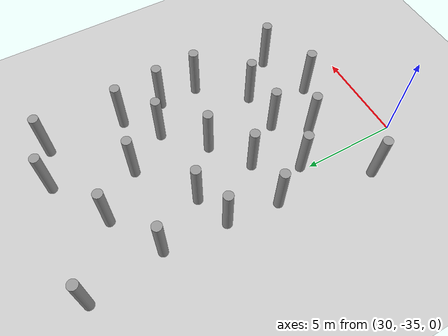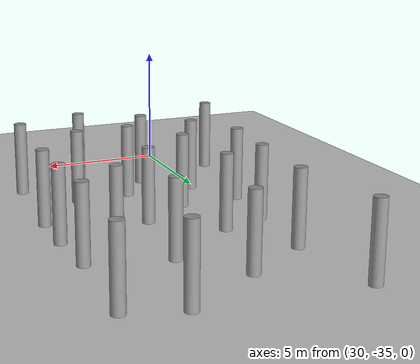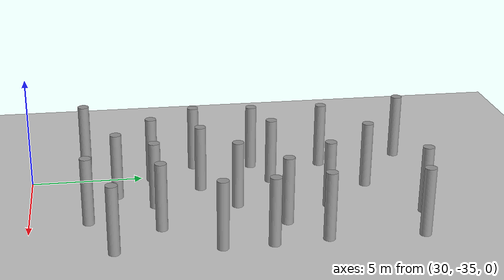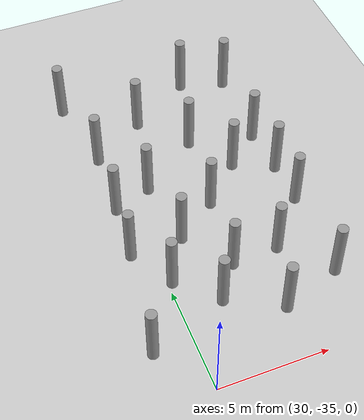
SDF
<sdf version="1.6">
 <world name="default">
  <model name="ground_plane">
   <static>1</static>
   <link name="link">
    <collision name="collision">
     <geometry><plane><normal>0 0 1</normal><size>100 100</size></plane></geometry>
     <surface><friction><ode><mu>100</mu><mu2>50</mu2></ode></friction></surface>
    </collision>
    <visual name="visual">
     <cast_shadows>0</cast_shadows>
     <geometry><plane><normal>0 0 1</normal><size>100 100</size></plane></geometry>
     <material>
      <script><uri>file://media/materials/scripts/gazebo.material</uri><name>Gazebo/Grey</name></script>
     </material>
    </visual>
   </link>
  </model>
  <model name="LjjForest_7">
   <link name="link_0_clone">
    <inertial>
     <mass>1</mass>
     <inertia><ixx>0.145833</ixx><ixy>0</ixy><ixz>0</ixz><iyy>0.145833</iyy><iyz>0</iyz><izz>0.125</izz></inertia>
    </inertial>
    <pose>-2.83119 0.981911 0 0 -0 0</pose>
    <visual name="visual">
     <geometry><cylinder><radius>0.25</radius><length>3</length></cylinder></geometry>
     <material>
      <lighting>1</lighting>
      <script><uri>file://media/materials/scripts/gazebo.material</uri><name>Gazebo/Grey</name></script>
      <shader type="vertex"><normal_map>__default__</normal_map></shader>
      <ambient>0.3 0.3 0.3 1</ambient>
      <diffuse>0.7 0.7 0.7 1</diffuse>
      <specular>0.01 0.01 0.01 1</specular>
      <emissive>0 0 0 1</emissive>
     </material>
    </visual>
    <collision name="collision">
     <geometry><cylinder><radius>0.25</radius><length>3</length></cylinder></geometry>
     <surface>
      <friction>
       <ode><mu>1</mu><mu2>1</mu2><fdir1>0 0 0</fdir1><slip1>0</slip1><slip2>0</slip2></ode>
       <torsional>
        <coefficient>1</coefficient>
        <patch_radius>0</patch_radius>
        <surface_radius>0</surface_radius>
        <use_patch_radius>1</use_patch_radius>
        <ode><slip>0</slip></ode>
       </torsional>
      </friction>
      <bounce><restitution_coefficient>0</restitution_coefficient><threshold>1e+06</threshold></bounce>
      <contact>
       <collide_without_contact>0</collide_without_contact>
       <collide_without_contact_bitmask>1</collide_without_contact_bitmask>
       <collide_bitmask>1</collide_bitmask>
       <ode>
        <soft_cfm>0</soft_cfm>
        <soft_erp>0.2</soft_erp>
        <kp>1e+13</kp>
        <kd>1</kd>
        <max_vel>0.01</max_vel>
        <min_depth>0</min_depth>
       </ode>
       <bullet>
        <split_impulse>1</split_impulse>
        <split_impulse_penetration_threshold>-0.01</split_impulse_penetration_threshold>
        <soft_cfm>0</soft_cfm>
        <soft_erp>0.2</soft_erp>
        <kp>1e+13</kp>
        <kd>1</kd>
       </bullet>
      </contact>
     </surface>
    </collision>
   </link>
   <link name="link_0_clone_0">
    <inertial>
     <mass>1</mass>
     <inertia><ixx>0.145833</ixx><ixy>0</ixy><ixz>0</ixz><iyy>0.145833</iyy><iyz>0</iyz><izz>0.125</izz></inertia>
    </inertial>
    <pose>-0.25253 2.5682 0 0 -0 0</pose>
    <visual name="visual">
     <geometry><cylinder><radius>0.25</radius><length>3</length></cylinder></geometry>
     <material>
      <lighting>1</lighting>
      <script><uri>file://media/materials/scripts/gazebo.material</uri><name>Gazebo/Grey</name></script>
      <shader type="vertex"><normal_map>__default__</normal_map></shader>
      <ambient>0.3 0.3 0.3 1</ambient>
      <diffuse>0.7 0.7 0.7 1</diffuse>
      <specular>0.01 0.01 0.01 1</specular>
      <emissive>0 0 0 1</emissive>
     </material>
    </visual>
    <collision name="collision">
     <geometry><cylinder><radius>0.25</radius><length>3</length></cylinder></geometry>
     <surface>
      <friction>
       <ode><mu>1</mu><mu2>1</mu2><fdir1>0 0 0</fdir1><slip1>0</slip1><slip2>0</slip2></ode>
       <torsional>
        <coefficient>1</coefficient>
        <patch_radius>0</patch_radius>
        <surface_radius>0</surface_radius>
        <use_patch_radius>1</use_patch_radius>
        <ode><slip>0</slip></ode>
       </torsional>
      </friction>
      <bounce><restitution_coefficient>0</restitution_coefficient><threshold>1e+06</threshold></bounce>
      <contact>
       <collide_without_contact>0</collide_without_contact>
       <collide_without_contact_bitmask>1</collide_without_contact_bitmask>
       <collide_bitmask>1</collide_bitmask>
       <ode>
        <soft_cfm>0</soft_cfm>
        <soft_erp>0.2</soft_erp>
        <kp>1e+13</kp>
        <kd>1</kd>
        <max_vel>0.01</max_vel>
        <min_depth>0</min_depth>
       </ode>
       <bullet>
        <split_impulse>1</split_impulse>
        <split_impulse_penetration_threshold>-0.01</split_impulse_penetration_threshold>
        <soft_cfm>0</soft_cfm>
        <soft_erp>0.2</soft_erp>
        <kp>1e+13</kp>
        <kd>1</kd>
       </bullet>
      </contact>
     </surface>
    </collision>
   </link>
   <link name="link_0_clone_1">
    <inertial>
     <mass>1</mass>
     <inertia><ixx>0.145833</ixx><ixy>0</ixy><ixz>0</ixz><iyy>0.145833</iyy><iyz>0</iyz><izz>0.125</izz></inertia>
    </inertial>
    <pose>-1.2394 -1.64814 0 0 -0 0</pose>
    <visual name="visual">
     <geometry><cylinder><radius>0.25</radius><length>3</length></cylinder></geometry>
     <material>
      <lighting>1</lighting>
      <script><uri>file://media/materials/scripts/gazebo.material</uri><name>Gazebo/Grey</name></script>
      <shader type="vertex"><normal_map>__default__</normal_map></shader>
      <ambient>0.3 0.3 0.3 1</ambient>
      <diffuse>0.7 0.7 0.7 1</diffuse>
      <specular>0.01 0.01 0.01 1</specular>
      <emissive>0 0 0 1</emissive>
     </material>
    </visual>
    <collision name="collision">
     <geometry><cylinder><radius>0.25</radius><length>3</length></cylinder></geometry>
     <surface>
      <friction>
       <ode><mu>1</mu><mu2>1</mu2><fdir1>0 0 0</fdir1><slip1>0</slip1><slip2>0</slip2></ode>
       <torsional>
        <coefficient>1</coefficient>
        <patch_radius>0</patch_radius>
        <surface_radius>0</surface_radius>
        <use_patch_radius>1</use_patch_radius>
        <ode><slip>0</slip></ode>
       </torsional>
      </friction>
      <bounce><restitution_coefficient>0</restitution_coefficient><threshold>1e+06</threshold></bounce>
      <contact>
       <collide_without_contact>0</collide_without_contact>
       <collide_without_contact_bitmask>1</collide_without_contact_bitmask>
       <collide_bitmask>1</collide_bitmask>
       <ode>
        <soft_cfm>0</soft_cfm>
        <soft_erp>0.2</soft_erp>
        <kp>1e+13</kp>
        <kd>1</kd>
        <max_vel>0.01</max_vel>
        <min_depth>0</min_depth>
       </ode>
       <bullet>
        <split_impulse>1</split_impulse>
        <split_impulse_penetration_threshold>-0.01</split_impulse_penetration_threshold>
        <soft_cfm>0</soft_cfm>
        <soft_erp>0.2</soft_erp>
        <kp>1e+13</kp>
        <kd>1</kd>
       </bullet>
      </contact>
     </surface>
    </collision>
   </link>
   <link name="link_0_clone_10">
    <inertial>
     <mass>1</mass>
     <inertia><ixx>0.145833</ixx><ixy>0</ixy><ixz>0</ixz><iyy>0.145833</iyy><iyz>0</iyz><izz>0.125</izz></inertia>
    </inertial>
    <pose>4.92442 -4.7051 0 0 -0 0</pose>
    <visual name="visual">
     <geometry><cylinder><radius>0.25</radius><length>3</length></cylinder></geometry>
     <material>
      <lighting>1</lighting>
      <script><uri>file://media/materials/scripts/gazebo.material</uri><name>Gazebo/Grey</name></script>
      <shader type="vertex"><normal_map>__default__</normal_map></shader>
      <ambient>0.3 0.3 0.3 1</ambient>
      <diffuse>0.7 0.7 0.7 1</diffuse>
      <specular>0.01 0.01 0.01 1</specular>
      <emissive>0 0 0 1</emissive>
     </material>
    </visual>
    <collision name="collision">
     <geometry><cylinder><radius>0.25</radius><length>3</length></cylinder></geometry>
     <surface>
      <friction>
       <ode><mu>1</mu><mu2>1</mu2><fdir1>0 0 0</fdir1><slip1>0</slip1><slip2>0</slip2></ode>
       <torsional>
        <coefficient>1</coefficient>
        <patch_radius>0</patch_radius>
        <surface_radius>0</surface_radius>
        <use_patch_radius>1</use_patch_radius>
        <ode><slip>0</slip></ode>
       </torsional>
      </friction>
      <bounce><restitution_coefficient>0</restitution_coefficient><threshold>1e+06</threshold></bounce>
      <contact>
       <collide_without_contact>0</collide_without_contact>
       <collide_without_contact_bitmask>1</collide_without_contact_bitmask>
       <collide_bitmask>1</collide_bitmask>
       <ode>
        <soft_cfm>0</soft_cfm>
        <soft_erp>0.2</soft_erp>
        <kp>1e+13</kp>
        <kd>1</kd>
        <max_vel>0.01</max_vel>
        <min_depth>0</min_depth>
       </ode>
       <bullet>
        <split_impulse>1</split_impulse>
        <split_impulse_penetration_threshold>-0.01</split_impulse_penetration_threshold>
        <soft_cfm>0</soft_cfm>
        <soft_erp>0.2</soft_erp>
        <kp>1e+13</kp>
        <kd>1</kd>
       </bullet>
      </contact>
     </surface>
    </collision>
   </link>
   <link name="link_0_clone_11">
    <inertial>
     <mass>1</mass>
     <inertia><ixx>0.145833</ixx><ixy>0</ixy><ixz>0</ixz><iyy>0.145833</iyy><iyz>0</iyz><izz>0.125</izz></inertia>
    </inertial>
    <pose>2.92414 -7.00263 0 0 -0 0</pose>
    <visual name="visual">
     <geometry><cylinder><radius>0.25</radius><length>3</length></cylinder></geometry>
     <material>
      <lighting>1</lighting>
      <script><uri>file://media/materials/scripts/gazebo.material</uri><name>Gazebo/Grey</name></script>
      <shader type="vertex"><normal_map>__default__</normal_map></shader>
      <ambient>0.3 0.3 0.3 1</ambient>
      <diffuse>0.7 0.7 0.7 1</diffuse>
      <specular>0.01 0.01 0.01 1</specular>
      <emissive>0 0 0 1</emissive>
     </material>
    </visual>
    <collision name="collision">
     <geometry><cylinder><radius>0.25</radius><length>3</length></cylinder></geometry>
     <surface>
      <friction>
       <ode><mu>1</mu><mu2>1</mu2><fdir1>0 0 0</fdir1><slip1>0</slip1><slip2>0</slip2></ode>
       <torsional>
        <coefficient>1</coefficient>
        <patch_radius>0</patch_radius>
        <surface_radius>0</surface_radius>
        <use_patch_radius>1</use_patch_radius>
        <ode><slip>0</slip></ode>
       </torsional>
      </friction>
      <bounce><restitution_coefficient>0</restitution_coefficient><threshold>1e+06</threshold></bounce>
      <contact>
       <collide_without_contact>0</collide_without_contact>
       <collide_without_contact_bitmask>1</collide_without_contact_bitmask>
       <collide_bitmask>1</collide_bitmask>
       <ode>
        <soft_cfm>0</soft_cfm>
        <soft_erp>0.2</soft_erp>
        <kp>1e+13</kp>
        <kd>1</kd>
        <max_vel>0.01</max_vel>
        <min_depth>0</min_depth>
       </ode>
       <bullet>
        <split_impulse>1</split_impulse>
        <split_impulse_penetration_threshold>-0.01</split_impulse_penetration_threshold>
        <soft_cfm>0</soft_cfm>
        <soft_erp>0.2</soft_erp>
        <kp>1e+13</kp>
        <kd>1</kd>
       </bullet>
      </contact>
     </surface>
    </collision>
   </link>
   <link name="link_0_clone_12">
    <inertial>
     <mass>1</mass>
     <inertia><ixx>0.145833</ixx><ixy>0</ixy><ixz>0</ixz><iyy>0.145833</iyy><iyz>0</iyz><izz>0.125</izz></inertia>
    </inertial>
    <pose>4.76112 -9.06376 0 0 -0 0</pose>
    <visual name="visual">
     <geometry><cylinder><radius>0.25</radius><length>3</length></cylinder></geometry>
     <material>
      <lighting>1</lighting>
      <script><uri>file://media/materials/scripts/gazebo.material</uri><name>Gazebo/Grey</name></script>
      <shader type="vertex"><normal_map>__default__</normal_map></shader>
      <ambient>0.3 0.3 0.3 1</ambient>
      <diffuse>0.7 0.7 0.7 1</diffuse>
      <specular>0.01 0.01 0.01 1</specular>
      <emissive>0 0 0 1</emissive>
     </material>
    </visual>
    <collision name="collision">
     <geometry><cylinder><radius>0.25</radius><length>3</length></cylinder></geometry>
     <surface>
      <friction>
       <ode><mu>1</mu><mu2>1</mu2><fdir1>0 0 0</fdir1><slip1>0</slip1><slip2>0</slip2></ode>
       <torsional>
        <coefficient>1</coefficient>
        <patch_radius>0</patch_radius>
        <surface_radius>0</surface_radius>
        <use_patch_radius>1</use_patch_radius>
        <ode><slip>0</slip></ode>
       </torsional>
      </friction>
      <bounce><restitution_coefficient>0</restitution_coefficient><threshold>1e+06</threshold></bounce>
      <contact>
       <collide_without_contact>0</collide_without_contact>
       <collide_without_contact_bitmask>1</collide_without_contact_bitmask>
       <collide_bitmask>1</collide_bitmask>
       <ode>
        <soft_cfm>0</soft_cfm>
        <soft_erp>0.2</soft_erp>
        <kp>1e+13</kp>
        <kd>1</kd>
        <max_vel>0.01</max_vel>
        <min_depth>0</min_depth>
       </ode>
       <bullet>
        <split_impulse>1</split_impulse>
        <split_impulse_penetration_threshold>-0.01</split_impulse_penetration_threshold>
        <soft_cfm>0</soft_cfm>
        <soft_erp>0.2</soft_erp>
        <kp>1e+13</kp>
        <kd>1</kd>
       </bullet>
      </contact>
     </surface>
    </collision>
   </link>
   <link name="link_0_clone_13">
    <inertial>
     <mass>1</mass>
     <inertia><ixx>0.145833</ixx><ixy>0</ixy><ixz>0</ixz><iyy>0.145833</iyy><iyz>0</iyz><izz>0.125</izz></inertia>
    </inertial>
    <pose>0.731055 -7.10049 0 0 -0 0</pose>
    <visual name="visual">
     <geometry><cylinder><radius>0.25</radius><length>3</length></cylinder></geometry>
     <material>
      <lighting>1</lighting>
      <script><uri>file://media/materials/scripts/gazebo.material</uri><name>Gazebo/Grey</name></script>
      <shader type="vertex"><normal_map>__default__</normal_map></shader>
      <ambient>0.3 0.3 0.3 1</ambient>
      <diffuse>0.7 0.7 0.7 1</diffuse>
      <specular>0.01 0.01 0.01 1</specular>
      <emissive>0 0 0 1</emissive>
     </material>
    </visual>
    <collision name="collision">
     <geometry><cylinder><radius>0.25</radius><length>3</length></cylinder></geometry>
     <surface>
      <friction>
       <ode><mu>1</mu><mu2>1</mu2><fdir1>0 0 0</fdir1><slip1>0</slip1><slip2>0</slip2></ode>
       <torsional>
        <coefficient>1</coefficient>
        <patch_radius>0</patch_radius>
        <surface_radius>0</surface_radius>
        <use_patch_radius>1</use_patch_radius>
        <ode><slip>0</slip></ode>
       </torsional>
      </friction>
      <bounce><restitution_coefficient>0</restitution_coefficient><threshold>1e+06</threshold></bounce>
      <contact>
       <collide_without_contact>0</collide_without_contact>
       <collide_without_contact_bitmask>1</collide_without_contact_bitmask>
       <collide_bitmask>1</collide_bitmask>
       <ode>
        <soft_cfm>0</soft_cfm>
        <soft_erp>0.2</soft_erp>
        <kp>1e+13</kp>
        <kd>1</kd>
        <max_vel>0.01</max_vel>
        <min_depth>0</min_depth>
       </ode>
       <bullet>
        <split_impulse>1</split_impulse>
        <split_impulse_penetration_threshold>-0.01</split_impulse_penetration_threshold>
        <soft_cfm>0</soft_cfm>
        <soft_erp>0.2</soft_erp>
        <kp>1e+13</kp>
        <kd>1</kd>
       </bullet>
      </contact>
     </surface>
    </collision>
   </link>
   <link name="link_0_clone_14">
    <inertial>
     <mass>1</mass>
     <inertia><ixx>0.145833</ixx><ixy>0</ixy><ixz>0</ixz><iyy>0.145833</iyy><iyz>0</iyz><izz>0.125</izz></inertia>
    </inertial>
    <pose>-0.840028 -4.93267 0 0 -0 0</pose>
    <visual name="visual">
     <geometry><cylinder><radius>0.25</radius><length>3</length></cylinder></geometry>
     <material>
      <lighting>1</lighting>
      <script><uri>file://media/materials/scripts/gazebo.material</uri><name>Gazebo/Grey</name></script>
      <shader type="vertex"><normal_map>__default__</normal_map></shader>
      <ambient>0.3 0.3 0.3 1</ambient>
      <diffuse>0.7 0.7 0.7 1</diffuse>
      <specular>0.01 0.01 0.01 1</specular>
      <emissive>0 0 0 1</emissive>
     </material>
    </visual>
    <collision name="collision">
     <geometry><cylinder><radius>0.25</radius><length>3</length></cylinder></geometry>
     <surface>
      <friction>
       <ode><mu>1</mu><mu2>1</mu2><fdir1>0 0 0</fdir1><slip1>0</slip1><slip2>0</slip2></ode>
       <torsional>
        <coefficient>1</coefficient>
        <patch_radius>0</patch_radius>
        <surface_radius>0</surface_radius>
        <use_patch_radius>1</use_patch_radius>
        <ode><slip>0</slip></ode>
       </torsional>
      </friction>
      <bounce><restitution_coefficient>0</restitution_coefficient><threshold>1e+06</threshold></bounce>
      <contact>
       <collide_without_contact>0</collide_without_contact>
       <collide_without_contact_bitmask>1</collide_without_contact_bitmask>
       <collide_bitmask>1</collide_bitmask>
       <ode>
        <soft_cfm>0</soft_cfm>
        <soft_erp>0.2</soft_erp>
        <kp>1e+13</kp>
        <kd>1</kd>
        <max_vel>0.01</max_vel>
        <min_depth>0</min_depth>
       </ode>
       <bullet>
        <split_impulse>1</split_impulse>
        <split_impulse_penetration_threshold>-0.01</split_impulse_penetration_threshold>
        <soft_cfm>0</soft_cfm>
        <soft_erp>0.2</soft_erp>
        <kp>1e+13</kp>
        <kd>1</kd>
       </bullet>
      </contact>
     </surface>
    </collision>
   </link>
   <link name="link_0_clone_15">
    <inertial>
     <mass>1</mass>
     <inertia><ixx>0.145833</ixx><ixy>0</ixy><ixz>0</ixz><iyy>0.145833</iyy><iyz>0</iyz><izz>0.125</izz></inertia>
    </inertial>
    <pose>-3.03254 -2.29236 0 0 -0 0</pose>
    <visual name="visual">
     <geometry><cylinder><radius>0.25</radius><length>3</length></cylinder></geometry>
     <material>
      <lighting>1</lighting>
      <script><uri>file://media/materials/scripts/gazebo.material</uri><name>Gazebo/Grey</name></script>
      <shader type="vertex"><normal_map>__default__</normal_map></shader>
      <ambient>0.3 0.3 0.3 1</ambient>
      <diffuse>0.7 0.7 0.7 1</diffuse>
      <specular>0.01 0.01 0.01 1</specular>
      <emissive>0 0 0 1</emissive>
     </material>
    </visual>
    <collision name="collision">
     <geometry><cylinder><radius>0.25</radius><length>3</length></cylinder></geometry>
     <surface>
      <friction>
       <ode><mu>1</mu><mu2>1</mu2><fdir1>0 0 0</fdir1><slip1>0</slip1><slip2>0</slip2></ode>
       <torsional>
        <coefficient>1</coefficient>
        <patch_radius>0</patch_radius>
        <surface_radius>0</surface_radius>
        <use_patch_radius>1</use_patch_radius>
        <ode><slip>0</slip></ode>
       </torsional>
      </friction>
      <bounce><restitution_coefficient>0</restitution_coefficient><threshold>1e+06</threshold></bounce>
      <contact>
       <collide_without_contact>0</collide_without_contact>
       <collide_without_contact_bitmask>1</collide_without_contact_bitmask>
       <collide_bitmask>1</collide_bitmask>
       <ode>
        <soft_cfm>0</soft_cfm>
        <soft_erp>0.2</soft_erp>
        <kp>1e+13</kp>
        <kd>1</kd>
        <max_vel>0.01</max_vel>
        <min_depth>0</min_depth>
       </ode>
       <bullet>
        <split_impulse>1</split_impulse>
        <split_impulse_penetration_threshold>-0.01</split_impulse_penetration_threshold>
        <soft_cfm>0</soft_cfm>
        <soft_erp>0.2</soft_erp>
        <kp>1e+13</kp>
        <kd>1</kd>
       </bullet>
      </contact>
     </surface>
    </collision>
   </link>
   <link name="link_0_clone_17">
    <inertial>
     <mass>1</mass>
     <inertia><ixx>0.145833</ixx><ixy>0</ixy><ixz>0</ixz><iyy>0.145833</iyy><iyz>0</iyz><izz>0.125</izz></inertia>
    </inertial>
    <pose>-3.28823 -4.99733 0 0 -0 0</pose>
    <visual name="visual">
     <geometry><cylinder><radius>0.25</radius><length>3</length></cylinder></geometry>
     <material>
      <lighting>1</lighting>
      <script><uri>file://media/materials/scripts/gazebo.material</uri><name>Gazebo/Grey</name></script>
      <shader type="vertex"><normal_map>__default__</normal_map></shader>
      <ambient>0.3 0.3 0.3 1</ambient>
      <diffuse>0.7 0.7 0.7 1</diffuse>
      <specular>0.01 0.01 0.01 1</specular>
      <emissive>0 0 0 1</emissive>
     </material>
    </visual>
    <collision name="collision">
     <geometry><cylinder><radius>0.25</radius><length>3</length></cylinder></geometry>
     <surface>
      <friction>
       <ode><mu>1</mu><mu2>1</mu2><fdir1>0 0 0</fdir1><slip1>0</slip1><slip2>0</slip2></ode>
       <torsional>
        <coefficient>1</coefficient>
        <patch_radius>0</patch_radius>
        <surface_radius>0</surface_radius>
        <use_patch_radius>1</use_patch_radius>
        <ode><slip>0</slip></ode>
       </torsional>
      </friction>
      <bounce><restitution_coefficient>0</restitution_coefficient><threshold>1e+06</threshold></bounce>
      <contact>
       <collide_without_contact>0</collide_without_contact>
       <collide_without_contact_bitmask>1</collide_without_contact_bitmask>
       <collide_bitmask>1</collide_bitmask>
       <ode>
        <soft_cfm>0</soft_cfm>
        <soft_erp>0.2</soft_erp>
        <kp>1e+13</kp>
        <kd>1</kd>
        <max_vel>0.01</max_vel>
        <min_depth>0</min_depth>
       </ode>
       <bullet>
        <split_impulse>1</split_impulse>
        <split_impulse_penetration_threshold>-0.01</split_impulse_penetration_threshold>
        <soft_cfm>0</soft_cfm>
        <soft_erp>0.2</soft_erp>
        <kp>1e+13</kp>
        <kd>1</kd>
       </bullet>
      </contact>
     </surface>
    </collision>
   </link>
   <link name="link_0_clone_18">
    <inertial>
     <mass>1</mass>
     <inertia><ixx>0.145833</ixx><ixy>0</ixy><ixz>0</ixz><iyy>0.145833</iyy><iyz>0</iyz><izz>0.125</izz></inertia>
    </inertial>
    <pose>-2.11118 -7.04502 0 0 -0 0</pose>
    <visual name="visual">
     <geometry><cylinder><radius>0.25</radius><length>3</length></cylinder></geometry>
     <material>
      <lighting>1</lighting>
      <script><uri>file://media/materials/scripts/gazebo.material</uri><name>Gazebo/Grey</name></script>
      <shader type="vertex"><normal_map>__default__</normal_map></shader>
      <ambient>0.3 0.3 0.3 1</ambient>
      <diffuse>0.7 0.7 0.7 1</diffuse>
      <specular>0.01 0.01 0.01 1</specular>
      <emissive>0 0 0 1</emissive>
     </material>
    </visual>
    <collision name="collision">
     <geometry><cylinder><radius>0.25</radius><length>3</length></cylinder></geometry>
     <surface>
      <friction>
       <ode><mu>1</mu><mu2>1</mu2><fdir1>0 0 0</fdir1><slip1>0</slip1><slip2>0</slip2></ode>
       <torsional>
        <coefficient>1</coefficient>
        <patch_radius>0</patch_radius>
        <surface_radius>0</surface_radius>
        <use_patch_radius>1</use_patch_radius>
        <ode><slip>0</slip></ode>
       </torsional>
      </friction>
      <bounce><restitution_coefficient>0</restitution_coefficient><threshold>1e+06</threshold></bounce>
      <contact>
       <collide_without_contact>0</collide_without_contact>
       <collide_without_contact_bitmask>1</collide_without_contact_bitmask>
       <collide_bitmask>1</collide_bitmask>
       <ode>
        <soft_cfm>0</soft_cfm>
        <soft_erp>0.2</soft_erp>
        <kp>1e+13</kp>
        <kd>1</kd>
        <max_vel>0.01</max_vel>
        <min_depth>0</min_depth>
       </ode>
       <bullet>
        <split_impulse>1</split_impulse>
        <split_impulse_penetration_threshold>-0.01</split_impulse_penetration_threshold>
        <soft_cfm>0</soft_cfm>
        <soft_erp>0.2</soft_erp>
        <kp>1e+13</kp>
        <kd>1</kd>
       </bullet>
      </contact>
     </surface>
    </collision>
   </link>
   <link name="link_0_clone_19">
    <inertial>
     <mass>1</mass>
     <inertia><ixx>0.145833</ixx><ixy>0</ixy><ixz>0</ixz><iyy>0.145833</iyy><iyz>0</iyz><izz>0.125</izz></inertia>
    </inertial>
    <pose>-0.4391 -8.69513 0 0 -0 0</pose>
    <visual name="visual">
     <geometry><cylinder><radius>0.25</radius><length>3</length></cylinder></geometry>
     <material>
      <lighting>1</lighting>
      <script><uri>file://media/materials/scripts/gazebo.material</uri><name>Gazebo/Grey</name></script>
      <shader type="vertex"><normal_map>__default__</normal_map></shader>
      <ambient>0.3 0.3 0.3 1</ambient>
      <diffuse>0.7 0.7 0.7 1</diffuse>
      <specular>0.01 0.01 0.01 1</specular>
      <emissive>0 0 0 1</emissive>
     </material>
    </visual>
    <collision name="collision">
     <geometry><cylinder><radius>0.25</radius><length>3</length></cylinder></geometry>
     <surface>
      <friction>
       <ode><mu>1</mu><mu2>1</mu2><fdir1>0 0 0</fdir1><slip1>0</slip1><slip2>0</slip2></ode>
       <torsional>
        <coefficient>1</coefficient>
        <patch_radius>0</patch_radius>
        <surface_radius>0</surface_radius>
        <use_patch_radius>1</use_patch_radius>
        <ode><slip>0</slip></ode>
       </torsional>
      </friction>
      <bounce><restitution_coefficient>0</restitution_coefficient><threshold>1e+06</threshold></bounce>
      <contact>
       <collide_without_contact>0</collide_without_contact>
       <collide_without_contact_bitmask>1</collide_without_contact_bitmask>
       <collide_bitmask>1</collide_bitmask>
       <ode>
        <soft_cfm>0</soft_cfm>
        <soft_erp>0.2</soft_erp>
        <kp>1e+13</kp>
        <kd>1</kd>
        <max_vel>0.01</max_vel>
        <min_depth>0</min_depth>
       </ode>
       <bullet>
        <split_impulse>1</split_impulse>
        <split_impulse_penetration_threshold>-0.01</split_impulse_penetration_threshold>
        <soft_cfm>0</soft_cfm>
        <soft_erp>0.2</soft_erp>
        <kp>1e+13</kp>
        <kd>1</kd>
       </bullet>
      </contact>
     </surface>
    </collision>
   </link>
   <link name="link_0_clone_2">
    <inertial>
     <mass>1</mass>
     <inertia><ixx>0.145833</ixx><ixy>0</ixy><ixz>0</ixz><iyy>0.145833</iyy><iyz>0</iyz><izz>0.125</izz></inertia>
    </inertial>
    <pose>1.64727 0.418921 0 0 -0 0</pose>
    <visual name="visual">
     <geometry><cylinder><radius>0.25</radius><length>3</length></cylinder></geometry>
     <material>
      <lighting>1</lighting>
      <script><uri>file://media/materials/scripts/gazebo.material</uri><name>Gazebo/Grey</name></script>
      <shader type="vertex"><normal_map>__default__</normal_map></shader>
      <ambient>0.3 0.3 0.3 1</ambient>
      <diffuse>0.7 0.7 0.7 1</diffuse>
      <specular>0.01 0.01 0.01 1</specular>
      <emissive>0 0 0 1</emissive>
     </material>
    </visual>
    <collision name="collision">
     <geometry><cylinder><radius>0.25</radius><length>3</length></cylinder></geometry>
     <surface>
      <friction>
       <ode><mu>1</mu><mu2>1</mu2><fdir1>0 0 0</fdir1><slip1>0</slip1><slip2>0</slip2></ode>
       <torsional>
        <coefficient>1</coefficient>
        <patch_radius>0</patch_radius>
        <surface_radius>0</surface_radius>
        <use_patch_radius>1</use_patch_radius>
        <ode><slip>0</slip></ode>
       </torsional>
      </friction>
      <bounce><restitution_coefficient>0</restitution_coefficient><threshold>1e+06</threshold></bounce>
      <contact>
       <collide_without_contact>0</collide_without_contact>
       <collide_without_contact_bitmask>1</collide_without_contact_bitmask>
       <collide_bitmask>1</collide_bitmask>
       <ode>
        <soft_cfm>0</soft_cfm>
        <soft_erp>0.2</soft_erp>
        <kp>1e+13</kp>
        <kd>1</kd>
        <max_vel>0.01</max_vel>
        <min_depth>0</min_depth>
       </ode>
       <bullet>
        <split_impulse>1</split_impulse>
        <split_impulse_penetration_threshold>-0.01</split_impulse_penetration_threshold>
        <soft_cfm>0</soft_cfm>
        <soft_erp>0.2</soft_erp>
        <kp>1e+13</kp>
        <kd>1</kd>
       </bullet>
      </contact>
     </surface>
    </collision>
   </link>
   <link name="link_0_clone_20">
    <inertial>
     <mass>1</mass>
     <inertia><ixx>0.145833</ixx><ixy>0</ixy><ixz>0</ixz><iyy>0.145833</iyy><iyz>0</iyz><izz>0.125</izz></inertia>
    </inertial>
    <pose>1.97365 -10.0303 0 0 -0 0</pose>
    <visual name="visual">
     <geometry><cylinder><radius>0.25</radius><length>3</length></cylinder></geometry>
     <material>
      <lighting>1</lighting>
      <script><uri>file://media/materials/scripts/gazebo.material</uri><name>Gazebo/Grey</name></script>
      <shader type="vertex"><normal_map>__default__</normal_map></shader>
      <ambient>0.3 0.3 0.3 1</ambient>
      <diffuse>0.7 0.7 0.7 1</diffuse>
      <specular>0.01 0.01 0.01 1</specular>
      <emissive>0 0 0 1</emissive>
     </material>
    </visual>
    <collision name="collision">
     <geometry><cylinder><radius>0.25</radius><length>3</length></cylinder></geometry>
     <surface>
      <friction>
       <ode><mu>1</mu><mu2>1</mu2><fdir1>0 0 0</fdir1><slip1>0</slip1><slip2>0</slip2></ode>
       <torsional>
        <coefficient>1</coefficient>
        <patch_radius>0</patch_radius>
        <surface_radius>0</surface_radius>
        <use_patch_radius>1</use_patch_radius>
        <ode><slip>0</slip></ode>
       </torsional>
      </friction>
      <bounce><restitution_coefficient>0</restitution_coefficient><threshold>1e+06</threshold></bounce>
      <contact>
       <collide_without_contact>0</collide_without_contact>
       <collide_without_contact_bitmask>1</collide_without_contact_bitmask>
       <collide_bitmask>1</collide_bitmask>
       <ode>
        <soft_cfm>0</soft_cfm>
        <soft_erp>0.2</soft_erp>
        <kp>1e+13</kp>
        <kd>1</kd>
        <max_vel>0.01</max_vel>
        <min_depth>0</min_depth>
       </ode>
       <bullet>
        <split_impulse>1</split_impulse>
        <split_impulse_penetration_threshold>-0.01</split_impulse_penetration_threshold>
        <soft_cfm>0</soft_cfm>
        <soft_erp>0.2</soft_erp>
        <kp>1e+13</kp>
        <kd>1</kd>
       </bullet>
      </contact>
     </surface>
    </collision>
   </link>
   <link name="link_0_clone_21">
    <inertial>
     <mass>1</mass>
     <inertia><ixx>0.145833</ixx><ixy>0</ixy><ixz>0</ixz><iyy>0.145833</iyy><iyz>0</iyz><izz>0.125</izz></inertia>
    </inertial>
    <pose>-4.11405 -10.0375 0 0 -0 0</pose>
    <visual name="visual">
     <geometry><cylinder><radius>0.25</radius><length>3</length></cylinder></geometry>
     <material>
      <lighting>1</lighting>
      <script><uri>file://media/materials/scripts/gazebo.material</uri><name>Gazebo/Grey</name></script>
      <shader type="vertex"><normal_map>__default__</normal_map></shader>
      <ambient>0.3 0.3 0.3 1</ambient>
      <diffuse>0.7 0.7 0.7 1</diffuse>
      <specular>0.01 0.01 0.01 1</specular>
      <emissive>0 0 0 1</emissive>
     </material>
    </visual>
    <collision name="collision">
     <geometry><cylinder><radius>0.25</radius><length>3</length></cylinder></geometry>
     <surface>
      <friction>
       <ode><mu>1</mu><mu2>1</mu2><fdir1>0 0 0</fdir1><slip1>0</slip1><slip2>0</slip2></ode>
       <torsional>
        <coefficient>1</coefficient>
        <patch_radius>0</patch_radius>
        <surface_radius>0</surface_radius>
        <use_patch_radius>1</use_patch_radius>
        <ode><slip>0</slip></ode>
       </torsional>
      </friction>
      <bounce><restitution_coefficient>0</restitution_coefficient><threshold>1e+06</threshold></bounce>
      <contact>
       <collide_without_contact>0</collide_without_contact>
       <collide_without_contact_bitmask>1</collide_without_contact_bitmask>
       <collide_bitmask>1</collide_bitmask>
       <ode>
        <soft_cfm>0</soft_cfm>
        <soft_erp>0.2</soft_erp>
        <kp>1e+13</kp>
        <kd>1</kd>
        <max_vel>0.01</max_vel>
        <min_depth>0</min_depth>
       </ode>
       <bullet>
        <split_impulse>1</split_impulse>
        <split_impulse_penetration_threshold>-0.01</split_impulse_penetration_threshold>
        <soft_cfm>0</soft_cfm>
        <soft_erp>0.2</soft_erp>
        <kp>1e+13</kp>
        <kd>1</kd>
       </bullet>
      </contact>
     </surface>
    </collision>
   </link>
   <link name="link_0_clone_3">
    <inertial>
     <mass>1</mass>
     <inertia><ixx>0.145833</ixx><ixy>0</ixy><ixz>0</ixz><iyy>0.145833</iyy><iyz>0</iyz><izz>0.125</izz></inertia>
    </inertial>
    <pose>2.76214 4.38882 0 0 -0 0</pose>
    <visual name="visual">
     <geometry><cylinder><radius>0.25</radius><length>3</length></cylinder></geometry>
     <material>
      <lighting>1</lighting>
      <script><uri>file://media/materials/scripts/gazebo.material</uri><name>Gazebo/Grey</name></script>
      <shader type="vertex"><normal_map>__default__</normal_map></shader>
      <ambient>0.3 0.3 0.3 1</ambient>
      <diffuse>0.7 0.7 0.7 1</diffuse>
      <specular>0.01 0.01 0.01 1</specular>
      <emissive>0 0 0 1</emissive>
     </material>
    </visual>
    <collision name="collision">
     <geometry><cylinder><radius>0.25</radius><length>3</length></cylinder></geometry>
     <surface>
      <friction>
       <ode><mu>1</mu><mu2>1</mu2><fdir1>0 0 0</fdir1><slip1>0</slip1><slip2>0</slip2></ode>
       <torsional>
        <coefficient>1</coefficient>
        <patch_radius>0</patch_radius>
        <surface_radius>0</surface_radius>
        <use_patch_radius>1</use_patch_radius>
        <ode><slip>0</slip></ode>
       </torsional>
      </friction>
      <bounce><restitution_coefficient>0</restitution_coefficient><threshold>1e+06</threshold></bounce>
      <contact>
       <collide_without_contact>0</collide_without_contact>
       <collide_without_contact_bitmask>1</collide_without_contact_bitmask>
       <collide_bitmask>1</collide_bitmask>
       <ode>
        <soft_cfm>0</soft_cfm>
        <soft_erp>0.2</soft_erp>
        <kp>1e+13</kp>
        <kd>1</kd>
        <max_vel>0.01</max_vel>
        <min_depth>0</min_depth>
       </ode>
       <bullet>
        <split_impulse>1</split_impulse>
        <split_impulse_penetration_threshold>-0.01</split_impulse_penetration_threshold>
        <soft_cfm>0</soft_cfm>
        <soft_erp>0.2</soft_erp>
        <kp>1e+13</kp>
        <kd>1</kd>
       </bullet>
      </contact>
     </surface>
    </collision>
   </link>
   <link name="link_0_clone_31">
    <inertial>
     <mass>1</mass>
     <inertia><ixx>0.145833</ixx><ixy>0</ixy><ixz>0</ixz><iyy>0.145833</iyy><iyz>0</iyz><izz>0.125</izz></inertia>
    </inertial>
    <pose>4.87388 3.77106 0 0 -0 0</pose>
    <visual name="visual">
     <geometry><cylinder><radius>0.25</radius><length>3</length></cylinder></geometry>
     <material>
      <lighting>1</lighting>
      <script><uri>file://media/materials/scripts/gazebo.material</uri><name>Gazebo/Grey</name></script>
      <shader type="vertex"><normal_map>__default__</normal_map></shader>
      <ambient>0.3 0.3 0.3 1</ambient>
      <diffuse>0.7 0.7 0.7 1</diffuse>
      <specular>0.01 0.01 0.01 1</specular>
      <emissive>0 0 0 1</emissive>
     </material>
    </visual>
    <collision name="collision">
     <geometry><cylinder><radius>0.25</radius><length>3</length></cylinder></geometry>
     <surface>
      <friction>
       <ode><mu>1</mu><mu2>1</mu2><fdir1>0 0 0</fdir1><slip1>0</slip1><slip2>0</slip2></ode>
       <torsional>
        <coefficient>1</coefficient>
        <patch_radius>0</patch_radius>
        <surface_radius>0</surface_radius>
        <use_patch_radius>1</use_patch_radius>
        <ode><slip>0</slip></ode>
       </torsional>
      </friction>
      <bounce><restitution_coefficient>0</restitution_coefficient><threshold>1e+06</threshold></bounce>
      <contact>
       <collide_without_contact>0</collide_without_contact>
       <collide_without_contact_bitmask>1</collide_without_contact_bitmask>
       <collide_bitmask>1</collide_bitmask>
       <ode>
        <soft_cfm>0</soft_cfm>
        <soft_erp>0.2</soft_erp>
        <kp>1e+13</kp>
        <kd>1</kd>
        <max_vel>0.01</max_vel>
        <min_depth>0</min_depth>
       </ode>
       <bullet>
        <split_impulse>1</split_impulse>
        <split_impulse_penetration_threshold>-0.01</split_impulse_penetration_threshold>
        <soft_cfm>0</soft_cfm>
        <soft_erp>0.2</soft_erp>
        <kp>1e+13</kp>
        <kd>1</kd>
       </bullet>
      </contact>
     </surface>
    </collision>
   </link>
   <link name="link_0_clone_32">
    <inertial>
     <mass>1</mass>
     <inertia><ixx>0.145833</ixx><ixy>0</ixy><ixz>0</ixz><iyy>0.145833</iyy><iyz>0</iyz><izz>0.125</izz></inertia>
    </inertial>
    <pose>3.04344 -1.68403 0 0 -0 0</pose>
    <visual name="visual">
     <geometry><cylinder><radius>0.25</radius><length>3</length></cylinder></geometry>
     <material>
      <lighting>1</lighting>
      <script><uri>file://media/materials/scripts/gazebo.material</uri><name>Gazebo/Grey</name></script>
      <shader type="vertex"><normal_map>__default__</normal_map></shader>
      <ambient>0.3 0.3 0.3 1</ambient>
      <diffuse>0.7 0.7 0.7 1</diffuse>
      <specular>0.01 0.01 0.01 1</specular>
      <emissive>0 0 0 1</emissive>
     </material>
    </visual>
    <collision name="collision">
     <geometry><cylinder><radius>0.25</radius><length>3</length></cylinder></geometry>
     <surface>
      <friction>
       <ode><mu>1</mu><mu2>1</mu2><fdir1>0 0 0</fdir1><slip1>0</slip1><slip2>0</slip2></ode>
       <torsional>
        <coefficient>1</coefficient>
        <patch_radius>0</patch_radius>
        <surface_radius>0</surface_radius>
        <use_patch_radius>1</use_patch_radius>
        <ode><slip>0</slip></ode>
       </torsional>
      </friction>
      <bounce><restitution_coefficient>0</restitution_coefficient><threshold>1e+06</threshold></bounce>
      <contact>
       <collide_without_contact>0</collide_without_contact>
       <collide_without_contact_bitmask>1</collide_without_contact_bitmask>
       <collide_bitmask>1</collide_bitmask>
       <ode>
        <soft_cfm>0</soft_cfm>
        <soft_erp>0.2</soft_erp>
        <kp>1e+13</kp>
        <kd>1</kd>
        <max_vel>0.01</max_vel>
        <min_depth>0</min_depth>
       </ode>
       <bullet>
        <split_impulse>1</split_impulse>
        <split_impulse_penetration_threshold>-0.01</split_impulse_penetration_threshold>
        <soft_cfm>0</soft_cfm>
        <soft_erp>0.2</soft_erp>
        <kp>1e+13</kp>
        <kd>1</kd>
       </bullet>
      </contact>
     </surface>
    </collision>
   </link>
   <link name="link_0_clone_6">
    <inertial>
     <mass>1</mass>
     <inertia><ixx>0.145833</ixx><ixy>0</ixy><ixz>0</ixz><iyy>0.145833</iyy><iyz>0</iyz><izz>0.125</izz></inertia>
    </inertial>
    <pose>-3.46215 4.85006 0 0 -0 0</pose>
    <visual name="visual">
     <geometry><cylinder><radius>0.25</radius><length>3</length></cylinder></geometry>
     <material>
      <lighting>1</lighting>
      <script><uri>file://media/materials/scripts/gazebo.material</uri><name>Gazebo/Grey</name></script>
      <shader type="vertex"><normal_map>__default__</normal_map></shader>
      <ambient>0.3 0.3 0.3 1</ambient>
      <diffuse>0.7 0.7 0.7 1</diffuse>
      <specular>0.01 0.01 0.01 1</specular>
      <emissive>0 0 0 1</emissive>
     </material>
    </visual>
    <collision name="collision">
     <geometry><cylinder><radius>0.25</radius><length>3</length></cylinder></geometry>
     <surface>
      <friction>
       <ode><mu>1</mu><mu2>1</mu2><fdir1>0 0 0</fdir1><slip1>0</slip1><slip2>0</slip2></ode>
       <torsional>
        <coefficient>1</coefficient>
        <patch_radius>0</patch_radius>
        <surface_radius>0</surface_radius>
        <use_patch_radius>1</use_patch_radius>
        <ode><slip>0</slip></ode>
       </torsional>
      </friction>
      <bounce><restitution_coefficient>0</restitution_coefficient><threshold>1e+06</threshold></bounce>
      <contact>
       <collide_without_contact>0</collide_without_contact>
       <collide_without_contact_bitmask>1</collide_without_contact_bitmask>
       <collide_bitmask>1</collide_bitmask>
       <ode>
        <soft_cfm>0</soft_cfm>
        <soft_erp>0.2</soft_erp>
        <kp>1e+13</kp>
        <kd>1</kd>
        <max_vel>0.01</max_vel>
        <min_depth>0</min_depth>
       </ode>
       <bullet>
        <split_impulse>1</split_impulse>
        <split_impulse_penetration_threshold>-0.01</split_impulse_penetration_threshold>
        <soft_cfm>0</soft_cfm>
        <soft_erp>0.2</soft_erp>
        <kp>1e+13</kp>
        <kd>1</kd>
       </bullet>
      </contact>
     </surface>
    </collision>
   </link>
   <link name="link_0_clone_7">
    <inertial>
     <mass>1</mass>
     <inertia><ixx>0.145833</ixx><ixy>0</ixy><ixz>0</ixz><iyy>0.145833</iyy><iyz>0</iyz><izz>0.125</izz></inertia>
    </inertial>
    <pose>1.14853 -3.52752 0 0 -0 0</pose>
    <visual name="visual">
     <geometry><cylinder><radius>0.25</radius><length>3</length></cylinder></geometry>
     <material>
      <lighting>1</lighting>
      <script><uri>file://media/materials/scripts/gazebo.material</uri><name>Gazebo/Grey</name></script>
      <shader type="vertex"><normal_map>__default__</normal_map></shader>
      <ambient>0.3 0.3 0.3 1</ambient>
      <diffuse>0.7 0.7 0.7 1</diffuse>
      <specular>0.01 0.01 0.01 1</specular>
      <emissive>0 0 0 1</emissive>
     </material>
    </visual>
    <collision name="collision">
     <geometry><cylinder><radius>0.25</radius><length>3</length></cylinder></geometry>
     <surface>
      <friction>
       <ode><mu>1</mu><mu2>1</mu2><fdir1>0 0 0</fdir1><slip1>0</slip1><slip2>0</slip2></ode>
       <torsional>
        <coefficient>1</coefficient>
        <patch_radius>0</patch_radius>
        <surface_radius>0</surface_radius>
        <use_patch_radius>1</use_patch_radius>
        <ode><slip>0</slip></ode>
       </torsional>
      </friction>
      <bounce><restitution_coefficient>0</restitution_coefficient><threshold>1e+06</threshold></bounce>
      <contact>
       <collide_without_contact>0</collide_without_contact>
       <collide_without_contact_bitmask>1</collide_without_contact_bitmask>
       <collide_bitmask>1</collide_bitmask>
       <ode>
        <soft_cfm>0</soft_cfm>
        <soft_erp>0.2</soft_erp>
        <kp>1e+13</kp>
        <kd>1</kd>
        <max_vel>0.01</max_vel>
        <min_depth>0</min_depth>
       </ode>
       <bullet>
        <split_impulse>1</split_impulse>
        <split_impulse_penetration_threshold>-0.01</split_impulse_penetration_threshold>
        <soft_cfm>0</soft_cfm>
        <soft_erp>0.2</soft_erp>
        <kp>1e+13</kp>
        <kd>1</kd>
       </bullet>
      </contact>
     </surface>
    </collision>
   </link>
   <link name="link_0_clone_8">
    <inertial>
     <mass>1</mass>
     <inertia><ixx>0.145833</ixx><ixy>0</ixy><ixz>0</ixz><iyy>0.145833</iyy><iyz>0</iyz><izz>0.125</izz></inertia>
    </inertial>
    <pose>4.72743 -0.273206 0 0 -0 0</pose>
    <visual name="visual">
     <geometry><cylinder><radius>0.25</radius><length>3</length></cylinder></geometry>
     <material>
      <lighting>1</lighting>
      <script><uri>file://media/materials/scripts/gazebo.material</uri><name>Gazebo/Grey</name></script>
      <shader type="vertex"><normal_map>__default__</normal_map></shader>
      <ambient>0.3 0.3 0.3 1</ambient>
      <diffuse>0.7 0.7 0.7 1</diffuse>
      <specular>0.01 0.01 0.01 1</specular>
      <emissive>0 0 0 1</emissive>
     </material>
    </visual>
    <collision name="collision">
     <geometry><cylinder><radius>0.25</radius><length>3</length></cylinder></geometry>
     <surface>
      <friction>
       <ode><mu>1</mu><mu2>1</mu2><fdir1>0 0 0</fdir1><slip1>0</slip1><slip2>0</slip2></ode>
       <torsional>
        <coefficient>1</coefficient>
        <patch_radius>0</patch_radius>
        <surface_radius>0</surface_radius>
        <use_patch_radius>1</use_patch_radius>
        <ode><slip>0</slip></ode>
       </torsional>
      </friction>
      <bounce><restitution_coefficient>0</restitution_coefficient><threshold>1e+06</threshold></bounce>
      <contact>
       <collide_without_contact>0</collide_without_contact>
       <collide_without_contact_bitmask>1</collide_without_contact_bitmask>
       <collide_bitmask>1</collide_bitmask>
       <ode>
        <soft_cfm>0</soft_cfm>
        <soft_erp>0.2</soft_erp>
        <kp>1e+13</kp>
        <kd>1</kd>
        <max_vel>0.01</max_vel>
        <min_depth>0</min_depth>
       </ode>
       <bullet>
        <split_impulse>1</split_impulse>
        <split_impulse_penetration_threshold>-0.01</split_impulse_penetration_threshold>
        <soft_cfm>0</soft_cfm>
        <soft_erp>0.2</soft_erp>
        <kp>1e+13</kp>
        <kd>1</kd>
       </bullet>
      </contact>
     </surface>
    </collision>
   </link>
   <link name="link_0_clone_9">
    <inertial>
     <mass>1</mass>
     <inertia><ixx>0.145833</ixx><ixy>0</ixy><ixz>0</ixz><iyy>0.145833</iyy><iyz>0</iyz><izz>0.125</izz></inertia>
    </inertial>
    <pose>4.89769 -2.58143 0 0 -0 0</pose>
    <visual name="visual">
     <geometry><cylinder><radius>0.25</radius><length>3</length></cylinder></geometry>
     <material>
      <lighting>1</lighting>
      <script><uri>file://media/materials/scripts/gazebo.material</uri><name>Gazebo/Grey</name></script>
      <shader type="vertex"><normal_map>__default__</normal_map></shader>
      <ambient>0.3 0.3 0.3 1</ambient>
      <diffuse>0.7 0.7 0.7 1</diffuse>
      <specular>0.01 0.01 0.01 1</specular>
      <emissive>0 0 0 1</emissive>
     </material>
    </visual>
    <collision name="collision">
     <geometry><cylinder><radius>0.25</radius><length>3</length></cylinder></geometry>
     <surface>
      <friction>
       <ode><mu>1</mu><mu2>1</mu2><fdir1>0 0 0</fdir1><slip1>0</slip1><slip2>0</slip2></ode>
       <torsional>
        <coefficient>1</coefficient>
        <patch_radius>0</patch_radius>
        <surface_radius>0</surface_radius>
        <use_patch_radius>1</use_patch_radius>
        <ode><slip>0</slip></ode>
       </torsional>
      </friction>
      <bounce><restitution_coefficient>0</restitution_coefficient><threshold>1e+06</threshold></bounce>
      <contact>
       <collide_without_contact>0</collide_without_contact>
       <collide_without_contact_bitmask>1</collide_without_contact_bitmask>
       <collide_bitmask>1</collide_bitmask>
       <ode>
        <soft_cfm>0</soft_cfm>
        <soft_erp>0.2</soft_erp>
        <kp>1e+13</kp>
        <kd>1</kd>
        <max_vel>0.01</max_vel>
        <min_depth>0</min_depth>
       </ode>
       <bullet>
        <split_impulse>1</split_impulse>
        <split_impulse_penetration_threshold>-0.01</split_impulse_penetration_threshold>
        <soft_cfm>0</soft_cfm>
        <soft_erp>0.2</soft_erp>
        <kp>1e+13</kp>
        <kd>1</kd>
       </bullet>
      </contact>
     </surface>
    </collision>
   </link>
   <static>0</static>
   <pose>32.2941 -22.489 1.5 0 -0 0.002156</pose>
  </model>
 </world>
</sdf>
